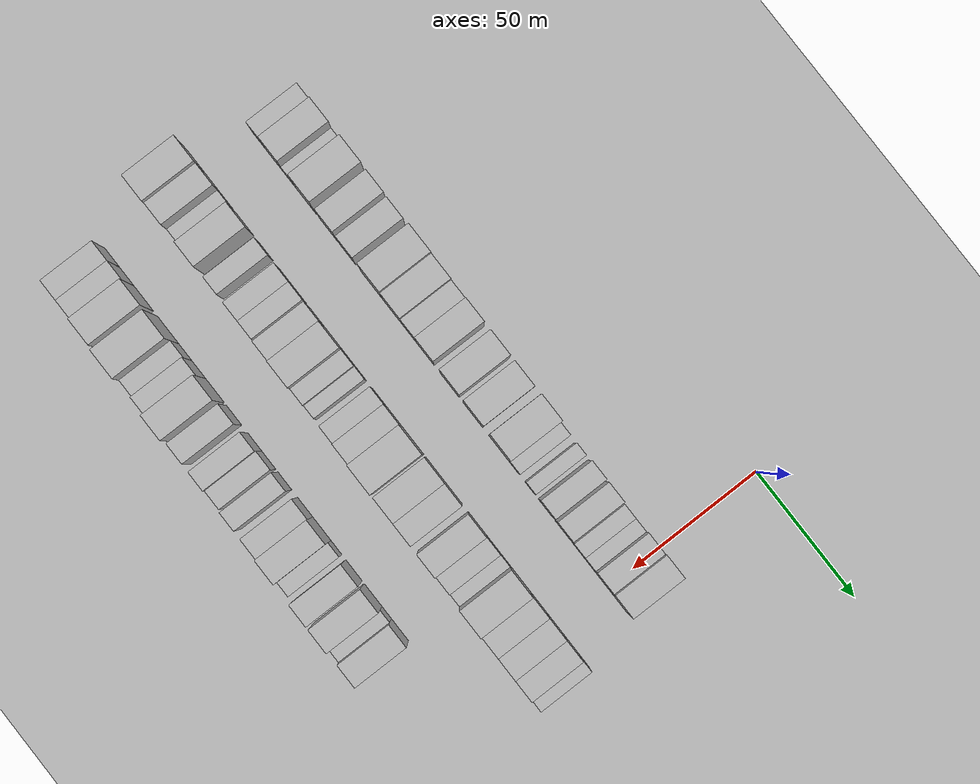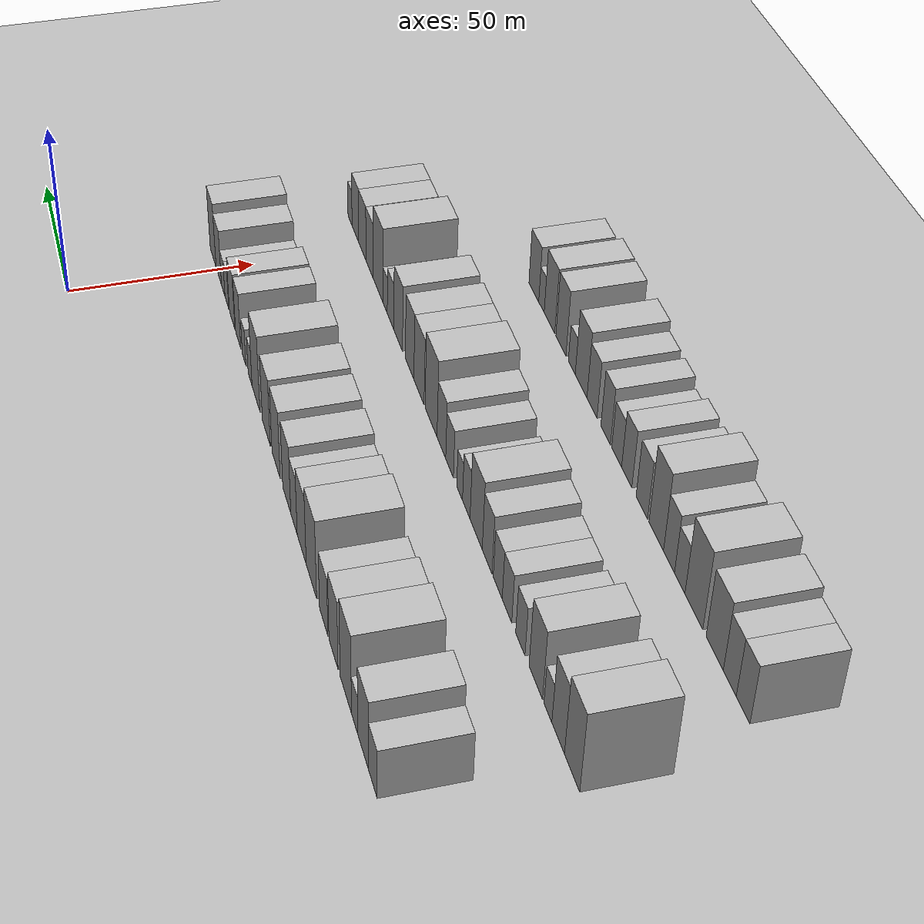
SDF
<sdf version="1.6">
 <world name="default">
  <include><name>ground_plane_1</name><uri>model://HANNAS_ground_plane</uri></include>
  <include>
   <name>ground_plane_2</name>
   <uri>model://HANNAS_ground_plane</uri>
   <pose>100 0 0  0 0 0</pose>
  </include>
  <model name="building_22">
   <static>1</static>
   <pose>50.0000 -181.2053 0 0.000000 0.000000 0.000000</pose>
   <link name="link">
    <pose>0 0 7.50 0 0 0</pose>
    <collision name="collision"><geometry><box><size>20.0000 7.4408 15.0000</size></box></geometry></collision>
    <visual name="visual">
     <cast_shadows>0</cast_shadows>
     <geometry><box><size>20.0000 7.4408 15.0000</size></box></geometry>
     <material>
      <script>
       <uri>model://HANNAS_wall/materials/scripts</uri>
       <uri>model://HANNAS_wall/materials/textures</uri>
       <name>vrc/HANNAS_wall</name>
      </script>
     </material>
    </visual>
   </link>
  </model>
  <model name="building_23">
   <static>1</static>
   <pose>50.0000 -172.6425 0 0.000000 0.000000 0.000000</pose>
   <link name="link">
    <pose>0 0 10.50 0 0 0</pose>
    <collision name="collision"><geometry><box><size>20.0000 9.6848 21.0000</size></box></geometry></collision>
    <visual name="visual">
     <cast_shadows>0</cast_shadows>
     <geometry><box><size>20.0000 9.6848 21.0000</size></box></geometry>
     <material>
      <script>
       <uri>model://HANNAS_wall/materials/scripts</uri>
       <uri>model://HANNAS_wall/materials/textures</uri>
       <name>vrc/HANNAS_wall</name>
      </script>
     </material>
    </visual>
   </link>
  </model>
  <model name="building_24">
   <static>1</static>
   <pose>50.0000 -164.8970 0 0.000000 0.000000 0.000000</pose>
   <link name="link">
    <pose>0 0 6.00 0 0 0</pose>
    <collision name="collision"><geometry><box><size>20.0000 5.8061 12.0000</size></box></geometry></collision>
    <visual name="visual">
     <cast_shadows>0</cast_shadows>
     <geometry><box><size>20.0000 5.8061 12.0000</size></box></geometry>
     <material>
      <script>
       <uri>model://HANNAS_wall/materials/scripts</uri>
       <uri>model://HANNAS_wall/materials/textures</uri>
       <name>vrc/HANNAS_wall</name>
      </script>
     </material>
    </visual>
   </link>
  </model>
  <model name="building_25">
   <static>1</static>
   <pose>50.0000 -156.5875 0 0.000000 0.000000 0.000000</pose>
   <link name="link">
    <pose>0 0 12.00 0 0 0</pose>
    <collision name="collision"><geometry><box><size>20.0000 10.8130 24.0000</size></box></geometry></collision>
    <visual name="visual">
     <cast_shadows>0</cast_shadows>
     <geometry><box><size>20.0000 10.8130 24.0000</size></box></geometry>
     <material>
      <script>
       <uri>model://HANNAS_wall/materials/scripts</uri>
       <uri>model://HANNAS_wall/materials/textures</uri>
       <name>vrc/HANNAS_wall</name>
      </script>
     </material>
    </visual>
   </link>
  </model>
  <model name="building_26">
   <static>1</static>
   <pose>50.0000 -144.6753 0 0.000000 0.000000 0.000000</pose>
   <link name="link">
    <pose>0 0 10.50 0 0 0</pose>
    <collision name="collision"><geometry><box><size>20.0000 9.0112 21.0000</size></box></geometry></collision>
    <visual name="visual">
     <cast_shadows>0</cast_shadows>
     <geometry><box><size>20.0000 9.0112 21.0000</size></box></geometry>
     <material>
      <script>
       <uri>model://HANNAS_wall/materials/scripts</uri>
       <uri>model://HANNAS_wall/materials/textures</uri>
       <name>vrc/HANNAS_wall</name>
      </script>
     </material>
    </visual>
   </link>
  </model>
  <model name="building_27">
   <static>1</static>
   <pose>50.0000 -134.8729 0 0.000000 0.000000 0.000000</pose>
   <link name="link">
    <pose>0 0 9.00 0 0 0</pose>
    <collision name="collision"><geometry><box><size>20.0000 8.5936 18.0000</size></box></geometry></collision>
    <visual name="visual">
     <cast_shadows>0</cast_shadows>
     <geometry><box><size>20.0000 8.5936 18.0000</size></box></geometry>
     <material>
      <script>
       <uri>model://HANNAS_wall/materials/scripts</uri>
       <uri>model://HANNAS_wall/materials/textures</uri>
       <name>vrc/HANNAS_wall</name>
      </script>
     </material>
    </visual>
   </link>
  </model>
  <model name="building_28">
   <static>1</static>
   <pose>50.0000 -121.9977 0 0.000000 0.000000 0.000000</pose>
   <link name="link">
    <pose>0 0 12.00 0 0 0</pose>
    <collision name="collision"><geometry><box><size>20.0000 11.1568 24.0000</size></box></geometry></collision>
    <visual name="visual">
     <cast_shadows>0</cast_shadows>
     <geometry><box><size>20.0000 11.1568 24.0000</size></box></geometry>
     <material>
      <script>
       <uri>model://HANNAS_wall/materials/scripts</uri>
       <uri>model://HANNAS_wall/materials/textures</uri>
       <name>vrc/HANNAS_wall</name>
      </script>
     </material>
    </visual>
   </link>
  </model>
  <model name="building_29">
   <static>1</static>
   <pose>50.0000 -111.4554 0 0.000000 0.000000 0.000000</pose>
   <link name="link">
    <pose>0 0 10.50 0 0 0</pose>
    <collision name="collision"><geometry><box><size>20.0000 9.9280 21.0000</size></box></geometry></collision>
    <visual name="visual">
     <cast_shadows>0</cast_shadows>
     <geometry><box><size>20.0000 9.9280 21.0000</size></box></geometry>
     <material>
      <script>
       <uri>model://HANNAS_wall/materials/scripts</uri>
       <uri>model://HANNAS_wall/materials/textures</uri>
       <name>vrc/HANNAS_wall</name>
      </script>
     </material>
    </visual>
   </link>
  </model>
  <model name="building_30">
   <static>1</static>
   <pose>50.0000 -102.8536 0 0.000000 0.000000 0.000000</pose>
   <link name="link">
    <pose>0 0 9.00 0 0 0</pose>
    <collision name="collision"><geometry><box><size>20.0000 7.2755 18.0000</size></box></geometry></collision>
    <visual name="visual">
     <cast_shadows>0</cast_shadows>
     <geometry><box><size>20.0000 7.2755 18.0000</size></box></geometry>
     <material>
      <script>
       <uri>model://HANNAS_wall/materials/scripts</uri>
       <uri>model://HANNAS_wall/materials/textures</uri>
       <name>vrc/HANNAS_wall</name>
      </script>
     </material>
    </visual>
   </link>
  </model>
  <model name="building_31">
   <static>1</static>
   <pose>50.0000 -94.5185 0 0.000000 0.000000 0.000000</pose>
   <link name="link">
    <pose>0 0 10.50 0 0 0</pose>
    <collision name="collision"><geometry><box><size>20.0000 9.3947 21.0000</size></box></geometry></collision>
    <visual name="visual">
     <cast_shadows>0</cast_shadows>
     <geometry><box><size>20.0000 9.3947 21.0000</size></box></geometry>
     <material>
      <script>
       <uri>model://HANNAS_wall/materials/scripts</uri>
       <uri>model://HANNAS_wall/materials/textures</uri>
       <name>vrc/HANNAS_wall</name>
      </script>
     </material>
    </visual>
   </link>
  </model>
  <model name="building_32">
   <static>1</static>
   <pose>50.0000 -81.8265 0 0.000000 0.000000 0.000000</pose>
   <link name="link">
    <pose>0 0 10.50 0 0 0</pose>
    <collision name="collision"><geometry><box><size>20.0000 9.9894 21.0000</size></box></geometry></collision>
    <visual name="visual">
     <cast_shadows>0</cast_shadows>
     <geometry><box><size>20.0000 9.9894 21.0000</size></box></geometry>
     <material>
      <script>
       <uri>model://HANNAS_wall/materials/scripts</uri>
       <uri>model://HANNAS_wall/materials/textures</uri>
       <name>vrc/HANNAS_wall</name>
      </script>
     </material>
    </visual>
   </link>
  </model>
  <model name="building_33">
   <static>1</static>
   <pose>50.0000 -69.7775 0 0.000000 0.000000 0.000000</pose>
   <link name="link">
    <pose>0 0 10.50 0 0 0</pose>
    <collision name="collision"><geometry><box><size>20.0000 10.1087 21.0000</size></box></geometry></collision>
    <visual name="visual">
     <cast_shadows>0</cast_shadows>
     <geometry><box><size>20.0000 10.1087 21.0000</size></box></geometry>
     <material>
      <script>
       <uri>model://HANNAS_wall/materials/scripts</uri>
       <uri>model://HANNAS_wall/materials/textures</uri>
       <name>vrc/HANNAS_wall</name>
      </script>
     </material>
    </visual>
   </link>
  </model>
  <model name="building_34">
   <static>1</static>
   <pose>50.0000 -56.4884 0 0.000000 0.000000 0.000000</pose>
   <link name="link">
    <pose>0 0 12.00 0 0 0</pose>
    <collision name="collision"><geometry><box><size>20.0000 10.4695 24.0000</size></box></geometry></collision>
    <visual name="visual">
     <cast_shadows>0</cast_shadows>
     <geometry><box><size>20.0000 10.4695 24.0000</size></box></geometry>
     <material>
      <script>
       <uri>model://HANNAS_wall/materials/scripts</uri>
       <uri>model://HANNAS_wall/materials/textures</uri>
       <name>vrc/HANNAS_wall</name>
      </script>
     </material>
    </visual>
   </link>
  </model>
  <model name="building_35">
   <static>1</static>
   <pose>50.0000 -48.6199 0 0.000000 0.000000 0.000000</pose>
   <link name="link">
    <pose>0 0 6.00 0 0 0</pose>
    <collision name="collision"><geometry><box><size>20.0000 5.2676 12.0000</size></box></geometry></collision>
    <visual name="visual">
     <cast_shadows>0</cast_shadows>
     <geometry><box><size>20.0000 5.2676 12.0000</size></box></geometry>
     <material>
      <script>
       <uri>model://HANNAS_wall/materials/scripts</uri>
       <uri>model://HANNAS_wall/materials/textures</uri>
       <name>vrc/HANNAS_wall</name>
      </script>
     </material>
    </visual>
   </link>
  </model>
  <model name="building_36">
   <static>1</static>
   <pose>50.0000 -40.5141 0 0.000000 0.000000 0.000000</pose>
   <link name="link">
    <pose>0 0 6.00 0 0 0</pose>
    <collision name="collision"><geometry><box><size>20.0000 4.9439 12.0000</size></box></geometry></collision>
    <visual name="visual">
     <cast_shadows>0</cast_shadows>
     <geometry><box><size>20.0000 4.9439 12.0000</size></box></geometry>
     <material>
      <script>
       <uri>model://HANNAS_wall/materials/scripts</uri>
       <uri>model://HANNAS_wall/materials/textures</uri>
       <name>vrc/HANNAS_wall</name>
      </script>
     </material>
    </visual>
   </link>
  </model>
  <model name="building_37">
   <static>1</static>
   <pose>50.0000 -32.3380 0 0.000000 0.000000 0.000000</pose>
   <link name="link">
    <pose>0 0 9.00 0 0 0</pose>
    <collision name="collision"><geometry><box><size>20.0000 7.4083 18.0000</size></box></geometry></collision>
    <visual name="visual">
     <cast_shadows>0</cast_shadows>
     <geometry><box><size>20.0000 7.4083 18.0000</size></box></geometry>
     <material>
      <script>
       <uri>model://HANNAS_wall/materials/scripts</uri>
       <uri>model://HANNAS_wall/materials/textures</uri>
       <name>vrc/HANNAS_wall</name>
      </script>
     </material>
    </visual>
   </link>
  </model>
  <model name="building_38">
   <static>1</static>
   <pose>50.0000 -23.7033 0 0.000000 0.000000 0.000000</pose>
   <link name="link">
    <pose>0 0 9.00 0 0 0</pose>
    <collision name="collision"><geometry><box><size>20.0000 7.8612 18.0000</size></box></geometry></collision>
    <visual name="visual">
     <cast_shadows>0</cast_shadows>
     <geometry><box><size>20.0000 7.8612 18.0000</size></box></geometry>
     <material>
      <script>
       <uri>model://HANNAS_wall/materials/scripts</uri>
       <uri>model://HANNAS_wall/materials/textures</uri>
       <name>vrc/HANNAS_wall</name>
      </script>
     </material>
    </visual>
   </link>
  </model>
  <model name="building_39">
   <static>1</static>
   <pose>50.0000 -15.9602 0 0.000000 0.000000 0.000000</pose>
   <link name="link">
    <pose>0 0 6.00 0 0 0</pose>
    <collision name="collision"><geometry><box><size>20.0000 5.6249 12.0000</size></box></geometry></collision>
    <visual name="visual">
     <cast_shadows>0</cast_shadows>
     <geometry><box><size>20.0000 5.6249 12.0000</size></box></geometry>
     <material>
      <script>
       <uri>model://HANNAS_wall/materials/scripts</uri>
       <uri>model://HANNAS_wall/materials/textures</uri>
       <name>vrc/HANNAS_wall</name>
      </script>
     </material>
    </visual>
   </link>
  </model>
  <model name="building_40">
   <static>1</static>
   <pose>50.0000 -10.5560 0 0.000000 0.000000 0.000000</pose>
   <link name="link">
    <pose>0 0 6.00 0 0 0</pose>
    <collision name="collision"><geometry><box><size>20.0000 5.1836 12.0000</size></box></geometry></collision>
    <visual name="visual">
     <cast_shadows>0</cast_shadows>
     <geometry><box><size>20.0000 5.1836 12.0000</size></box></geometry>
     <material>
      <script>
       <uri>model://HANNAS_wall/materials/scripts</uri>
       <uri>model://HANNAS_wall/materials/textures</uri>
       <name>vrc/HANNAS_wall</name>
      </script>
     </material>
    </visual>
   </link>
  </model>
  <model name="building_41">
   <static>1</static>
   <pose>50.0000 -3.8160 0 0.000000 0.000000 0.000000</pose>
   <link name="link">
    <pose>0 0 9.00 0 0 0</pose>
    <collision name="collision"><geometry><box><size>20.0000 8.2964 18.0000</size></box></geometry></collision>
    <visual name="visual">
     <cast_shadows>0</cast_shadows>
     <geometry><box><size>20.0000 8.2964 18.0000</size></box></geometry>
     <material>
      <script>
       <uri>model://HANNAS_wall/materials/scripts</uri>
       <uri>model://HANNAS_wall/materials/textures</uri>
       <name>vrc/HANNAS_wall</name>
      </script>
     </material>
    </visual>
   </link>
  </model>
  <model name="building_42">
   <static>1</static>
   <pose>50.0000 4.8499 0 0.000000 0.000000 0.000000</pose>
   <link name="link">
    <pose>0 0 10.50 0 0 0</pose>
    <collision name="collision"><geometry><box><size>20.0000 9.0354 21.0000</size></box></geometry></collision>
    <visual name="visual">
     <cast_shadows>0</cast_shadows>
     <geometry><box><size>20.0000 9.0354 21.0000</size></box></geometry>
     <material>
      <script>
       <uri>model://HANNAS_wall/materials/scripts</uri>
       <uri>model://HANNAS_wall/materials/textures</uri>
       <name>vrc/HANNAS_wall</name>
      </script>
     </material>
    </visual>
   </link>
  </model>
  <model name="building_107">
   <static>1</static>
   <pose>90.0000 -187.8448 0 0.000000 0.000000 0.000000</pose>
   <link name="link">
    <pose>0 0 12.00 0 0 0</pose>
    <collision name="collision"><geometry><box><size>20.0000 10.1697 24.0000</size></box></geometry></collision>
    <visual name="visual">
     <cast_shadows>0</cast_shadows>
     <geometry><box><size>20.0000 10.1697 24.0000</size></box></geometry>
     <material>
      <script>
       <uri>model://HANNAS_wall/materials/scripts</uri>
       <uri>model://HANNAS_wall/materials/textures</uri>
       <name>vrc/HANNAS_wall</name>
      </script>
     </material>
    </visual>
   </link>
  </model>
  <model name="building_108">
   <static>1</static>
   <pose>90.0000 -178.4564 0 0.000000 0.000000 0.000000</pose>
   <link name="link">
    <pose>0 0 10.50 0 0 0</pose>
    <collision name="collision"><geometry><box><size>20.0000 8.6071 21.0000</size></box></geometry></collision>
    <visual name="visual">
     <cast_shadows>0</cast_shadows>
     <geometry><box><size>20.0000 8.6071 21.0000</size></box></geometry>
     <material>
      <script>
       <uri>model://HANNAS_wall/materials/scripts</uri>
       <uri>model://HANNAS_wall/materials/textures</uri>
       <name>vrc/HANNAS_wall</name>
      </script>
     </material>
    </visual>
   </link>
  </model>
  <model name="building_109">
   <static>1</static>
   <pose>90.0000 -171.3762 0 0.000000 0.000000 0.000000</pose>
   <link name="link">
    <pose>0 0 6.00 0 0 0</pose>
    <collision name="collision"><geometry><box><size>20.0000 5.5532 12.0000</size></box></geometry></collision>
    <visual name="visual">
     <cast_shadows>0</cast_shadows>
     <geometry><box><size>20.0000 5.5532 12.0000</size></box></geometry>
     <material>
      <script>
       <uri>model://HANNAS_wall/materials/scripts</uri>
       <uri>model://HANNAS_wall/materials/textures</uri>
       <name>vrc/HANNAS_wall</name>
      </script>
     </material>
    </visual>
   </link>
  </model>
  <model name="building_110">
   <static>1</static>
   <pose>90.0000 -162.7116 0 0.000000 0.000000 0.000000</pose>
   <link name="link">
    <pose>0 0 10.50 0 0 0</pose>
    <collision name="collision"><geometry><box><size>20.0000 9.7762 21.0000</size></box></geometry></collision>
    <visual name="visual">
     <cast_shadows>0</cast_shadows>
     <geometry><box><size>20.0000 9.7762 21.0000</size></box></geometry>
     <material>
      <script>
       <uri>model://HANNAS_wall/materials/scripts</uri>
       <uri>model://HANNAS_wall/materials/textures</uri>
       <name>vrc/HANNAS_wall</name>
      </script>
     </material>
    </visual>
   </link>
  </model>
  <model name="building_111">
   <static>1</static>
   <pose>90.0000 -151.3101 0 0.000000 0.000000 0.000000</pose>
   <link name="link">
    <pose>0 0 7.50 0 0 0</pose>
    <collision name="collision"><geometry><box><size>20.0000 7.0269 15.0000</size></box></geometry></collision>
    <visual name="visual">
     <cast_shadows>0</cast_shadows>
     <geometry><box><size>20.0000 7.0269 15.0000</size></box></geometry>
     <material>
      <script>
       <uri>model://HANNAS_wall/materials/scripts</uri>
       <uri>model://HANNAS_wall/materials/textures</uri>
       <name>vrc/HANNAS_wall</name>
      </script>
     </material>
    </visual>
   </link>
  </model>
  <model name="building_112">
   <static>1</static>
   <pose>90.0000 -141.0720 0 0.000000 0.000000 0.000000</pose>
   <link name="link">
    <pose>0 0 7.50 0 0 0</pose>
    <collision name="collision"><geometry><box><size>20.0000 7.4492 15.0000</size></box></geometry></collision>
    <visual name="visual">
     <cast_shadows>0</cast_shadows>
     <geometry><box><size>20.0000 7.4492 15.0000</size></box></geometry>
     <material>
      <script>
       <uri>model://HANNAS_wall/materials/scripts</uri>
       <uri>model://HANNAS_wall/materials/textures</uri>
       <name>vrc/HANNAS_wall</name>
      </script>
     </material>
    </visual>
   </link>
  </model>
  <model name="building_113">
   <static>1</static>
   <pose>90.0000 -133.7697 0 0.000000 0.000000 0.000000</pose>
   <link name="link">
    <pose>0 0 7.50 0 0 0</pose>
    <collision name="collision"><geometry><box><size>20.0000 7.1555 15.0000</size></box></geometry></collision>
    <visual name="visual">
     <cast_shadows>0</cast_shadows>
     <geometry><box><size>20.0000 7.1555 15.0000</size></box></geometry>
     <material>
      <script>
       <uri>model://HANNAS_wall/materials/scripts</uri>
       <uri>model://HANNAS_wall/materials/textures</uri>
       <name>vrc/HANNAS_wall</name>
      </script>
     </material>
    </visual>
   </link>
  </model>
  <model name="building_114">
   <static>1</static>
   <pose>90.0000 -125.1662 0 0.000000 0.000000 0.000000</pose>
   <link name="link">
    <pose>0 0 9.00 0 0 0</pose>
    <collision name="collision"><geometry><box><size>20.0000 8.0514 18.0000</size></box></geometry></collision>
    <visual name="visual">
     <cast_shadows>0</cast_shadows>
     <geometry><box><size>20.0000 8.0514 18.0000</size></box></geometry>
     <material>
      <script>
       <uri>model://HANNAS_wall/materials/scripts</uri>
       <uri>model://HANNAS_wall/materials/textures</uri>
       <name>vrc/HANNAS_wall</name>
      </script>
     </material>
    </visual>
   </link>
  </model>
  <model name="building_115">
   <static>1</static>
   <pose>90.0000 -115.9366 0 0.000000 0.000000 0.000000</pose>
   <link name="link">
    <pose>0 0 10.50 0 0 0</pose>
    <collision name="collision"><geometry><box><size>20.0000 10.4077 21.0000</size></box></geometry></collision>
    <visual name="visual">
     <cast_shadows>0</cast_shadows>
     <geometry><box><size>20.0000 10.4077 21.0000</size></box></geometry>
     <material>
      <script>
       <uri>model://HANNAS_wall/materials/scripts</uri>
       <uri>model://HANNAS_wall/materials/textures</uri>
       <name>vrc/HANNAS_wall</name>
      </script>
     </material>
    </visual>
   </link>
  </model>
  <model name="building_116">
   <static>1</static>
   <pose>90.0000 -107.4800 0 0.000000 0.000000 0.000000</pose>
   <link name="link">
    <pose>0 0 7.50 0 0 0</pose>
    <collision name="collision"><geometry><box><size>20.0000 6.5055 15.0000</size></box></geometry></collision>
    <visual name="visual">
     <cast_shadows>0</cast_shadows>
     <geometry><box><size>20.0000 6.5055 15.0000</size></box></geometry>
     <material>
      <script>
       <uri>model://HANNAS_wall/materials/scripts</uri>
       <uri>model://HANNAS_wall/materials/textures</uri>
       <name>vrc/HANNAS_wall</name>
      </script>
     </material>
    </visual>
   </link>
  </model>
  <model name="building_117">
   <static>1</static>
   <pose>90.0000 -101.6644 0 0.000000 0.000000 0.000000</pose>
   <link name="link">
    <pose>0 0 6.00 0 0 0</pose>
    <collision name="collision"><geometry><box><size>20.0000 5.1257 12.0000</size></box></geometry></collision>
    <visual name="visual">
     <cast_shadows>0</cast_shadows>
     <geometry><box><size>20.0000 5.1257 12.0000</size></box></geometry>
     <material>
      <script>
       <uri>model://HANNAS_wall/materials/scripts</uri>
       <uri>model://HANNAS_wall/materials/textures</uri>
       <name>vrc/HANNAS_wall</name>
      </script>
     </material>
    </visual>
   </link>
  </model>
  <model name="building_118">
   <static>1</static>
   <pose>90.0000 -92.5995 0 0.000000 0.000000 0.000000</pose>
   <link name="link">
    <pose>0 0 7.50 0 0 0</pose>
    <collision name="collision"><geometry><box><size>20.0000 7.0041 15.0000</size></box></geometry></collision>
    <visual name="visual">
     <cast_shadows>0</cast_shadows>
     <geometry><box><size>20.0000 7.0041 15.0000</size></box></geometry>
     <material>
      <script>
       <uri>model://HANNAS_wall/materials/scripts</uri>
       <uri>model://HANNAS_wall/materials/textures</uri>
       <name>vrc/HANNAS_wall</name>
      </script>
     </material>
    </visual>
   </link>
  </model>
  <model name="building_119">
   <static>1</static>
   <pose>90.0000 -85.0147 0 0.000000 0.000000 0.000000</pose>
   <link name="link">
    <pose>0 0 9.00 0 0 0</pose>
    <collision name="collision"><geometry><box><size>20.0000 8.1655 18.0000</size></box></geometry></collision>
    <visual name="visual">
     <cast_shadows>0</cast_shadows>
     <geometry><box><size>20.0000 8.1655 18.0000</size></box></geometry>
     <material>
      <script>
       <uri>model://HANNAS_wall/materials/scripts</uri>
       <uri>model://HANNAS_wall/materials/textures</uri>
       <name>vrc/HANNAS_wall</name>
      </script>
     </material>
    </visual>
   </link>
  </model>
  <model name="building_120">
   <static>1</static>
   <pose>90.0000 -75.1805 0 0.000000 0.000000 0.000000</pose>
   <link name="link">
    <pose>0 0 12.00 0 0 0</pose>
    <collision name="collision"><geometry><box><size>20.0000 11.5029 24.0000</size></box></geometry></collision>
    <visual name="visual">
     <cast_shadows>0</cast_shadows>
     <geometry><box><size>20.0000 11.5029 24.0000</size></box></geometry>
     <material>
      <script>
       <uri>model://HANNAS_wall/materials/scripts</uri>
       <uri>model://HANNAS_wall/materials/textures</uri>
       <name>vrc/HANNAS_wall</name>
      </script>
     </material>
    </visual>
   </link>
  </model>
  <model name="building_121">
   <static>1</static>
   <pose>90.0000 -63.3546 0 0.000000 0.000000 0.000000</pose>
   <link name="link">
    <pose>0 0 10.50 0 0 0</pose>
    <collision name="collision"><geometry><box><size>20.0000 10.1490 21.0000</size></box></geometry></collision>
    <visual name="visual">
     <cast_shadows>0</cast_shadows>
     <geometry><box><size>20.0000 10.1490 21.0000</size></box></geometry>
     <material>
      <script>
       <uri>model://HANNAS_wall/materials/scripts</uri>
       <uri>model://HANNAS_wall/materials/textures</uri>
       <name>vrc/HANNAS_wall</name>
      </script>
     </material>
    </visual>
   </link>
  </model>
  <model name="building_122">
   <static>1</static>
   <pose>90.0000 -53.9121 0 0.000000 0.000000 0.000000</pose>
   <link name="link">
    <pose>0 0 10.50 0 0 0</pose>
    <collision name="collision"><geometry><box><size>20.0000 8.7361 21.0000</size></box></geometry></collision>
    <visual name="visual">
     <cast_shadows>0</cast_shadows>
     <geometry><box><size>20.0000 8.7361 21.0000</size></box></geometry>
     <material>
      <script>
       <uri>model://HANNAS_wall/materials/scripts</uri>
       <uri>model://HANNAS_wall/materials/textures</uri>
       <name>vrc/HANNAS_wall</name>
      </script>
     </material>
    </visual>
   </link>
  </model>
  <model name="building_123">
   <static>1</static>
   <pose>90.0000 -41.9718 0 0.000000 0.000000 0.000000</pose>
   <link name="link">
    <pose>0 0 10.50 0 0 0</pose>
    <collision name="collision"><geometry><box><size>20.0000 9.1444 21.0000</size></box></geometry></collision>
    <visual name="visual">
     <cast_shadows>0</cast_shadows>
     <geometry><box><size>20.0000 9.1444 21.0000</size></box></geometry>
     <material>
      <script>
       <uri>model://HANNAS_wall/materials/scripts</uri>
       <uri>model://HANNAS_wall/materials/textures</uri>
       <name>vrc/HANNAS_wall</name>
      </script>
     </material>
    </visual>
   </link>
  </model>
  <model name="building_124">
   <static>1</static>
   <pose>90.0000 -33.8086 0 0.000000 0.000000 0.000000</pose>
   <link name="link">
    <pose>0 0 7.50 0 0 0</pose>
    <collision name="collision"><geometry><box><size>20.0000 7.1821 15.0000</size></box></geometry></collision>
    <visual name="visual">
     <cast_shadows>0</cast_shadows>
     <geometry><box><size>20.0000 7.1821 15.0000</size></box></geometry>
     <material>
      <script>
       <uri>model://HANNAS_wall/materials/scripts</uri>
       <uri>model://HANNAS_wall/materials/textures</uri>
       <name>vrc/HANNAS_wall</name>
      </script>
     </material>
    </visual>
   </link>
  </model>
  <model name="building_125">
   <static>1</static>
   <pose>90.0000 -27.7693 0 0.000000 0.000000 0.000000</pose>
   <link name="link">
    <pose>0 0 6.00 0 0 0</pose>
    <collision name="collision"><geometry><box><size>20.0000 4.8965 12.0000</size></box></geometry></collision>
    <visual name="visual">
     <cast_shadows>0</cast_shadows>
     <geometry><box><size>20.0000 4.8965 12.0000</size></box></geometry>
     <material>
      <script>
       <uri>model://HANNAS_wall/materials/scripts</uri>
       <uri>model://HANNAS_wall/materials/textures</uri>
       <name>vrc/HANNAS_wall</name>
      </script>
     </material>
    </visual>
   </link>
  </model>
  <model name="building_126">
   <static>1</static>
   <pose>90.0000 -19.9947 0 0.000000 0.000000 0.000000</pose>
   <link name="link">
    <pose>0 0 12.00 0 0 0</pose>
    <collision name="collision"><geometry><box><size>20.0000 10.6526 24.0000</size></box></geometry></collision>
    <visual name="visual">
     <cast_shadows>0</cast_shadows>
     <geometry><box><size>20.0000 10.6526 24.0000</size></box></geometry>
     <material>
      <script>
       <uri>model://HANNAS_wall/materials/scripts</uri>
       <uri>model://HANNAS_wall/materials/textures</uri>
       <name>vrc/HANNAS_wall</name>
      </script>
     </material>
    </visual>
   </link>
  </model>
  <model name="building_127">
   <static>1</static>
   <pose>90.0000 -10.3225 0 0.000000 0.000000 0.000000</pose>
   <link name="link">
    <pose>0 0 9.00 0 0 0</pose>
    <collision name="collision"><geometry><box><size>20.0000 8.6918 18.0000</size></box></geometry></collision>
    <visual name="visual">
     <cast_shadows>0</cast_shadows>
     <geometry><box><size>20.0000 8.6918 18.0000</size></box></geometry>
     <material>
      <script>
       <uri>model://HANNAS_wall/materials/scripts</uri>
       <uri>model://HANNAS_wall/materials/textures</uri>
       <name>vrc/HANNAS_wall</name>
      </script>
     </material>
    </visual>
   </link>
  </model>
  <model name="building_128">
   <static>1</static>
   <pose>90.0000 -1.7011 0 0.000000 0.000000 0.000000</pose>
   <link name="link">
    <pose>0 0 9.00 0 0 0</pose>
    <collision name="collision"><geometry><box><size>20.0000 8.5512 18.0000</size></box></geometry></collision>
    <visual name="visual">
     <cast_shadows>0</cast_shadows>
     <geometry><box><size>20.0000 8.5512 18.0000</size></box></geometry>
     <material>
      <script>
       <uri>model://HANNAS_wall/materials/scripts</uri>
       <uri>model://HANNAS_wall/materials/textures</uri>
       <name>vrc/HANNAS_wall</name>
      </script>
     </material>
    </visual>
   </link>
  </model>
  <model name="building_129">
   <static>1</static>
   <pose>90.0000 6.6584 0 0.000000 0.000000 0.000000</pose>
   <link name="link">
    <pose>0 0 9.00 0 0 0</pose>
    <collision name="collision"><geometry><box><size>20.0000 8.1678 18.0000</size></box></geometry></collision>
    <visual name="visual">
     <cast_shadows>0</cast_shadows>
     <geometry><box><size>20.0000 8.1678 18.0000</size></box></geometry>
     <material>
      <script>
       <uri>model://HANNAS_wall/materials/scripts</uri>
       <uri>model://HANNAS_wall/materials/textures</uri>
       <name>vrc/HANNAS_wall</name>
      </script>
     </material>
    </visual>
   </link>
  </model>
  <model name="building_130">
   <static>1</static>
   <pose>90.0000 13.2261 0 0.000000 0.000000 0.000000</pose>
   <link name="link">
    <pose>0 0 6.00 0 0 0</pose>
    <collision name="collision"><geometry><box><size>20.0000 4.9676 12.0000</size></box></geometry></collision>
    <visual name="visual">
     <cast_shadows>0</cast_shadows>
     <geometry><box><size>20.0000 4.9676 12.0000</size></box></geometry>
     <material>
      <script>
       <uri>model://HANNAS_wall/materials/scripts</uri>
       <uri>model://HANNAS_wall/materials/textures</uri>
       <name>vrc/HANNAS_wall</name>
      </script>
     </material>
    </visual>
   </link>
  </model>
  <model name="building_191">
   <static>1</static>
   <pose>130.0000 -180.2423 0 0.000000 0.000000 0.000000</pose>
   <link name="link">
    <pose>0 0 9.00 0 0 0</pose>
    <collision name="collision"><geometry><box><size>20.0000 7.7831 18.0000</size></box></geometry></collision>
    <visual name="visual">
     <cast_shadows>0</cast_shadows>
     <geometry><box><size>20.0000 7.7831 18.0000</size></box></geometry>
     <material>
      <script>
       <uri>model://HANNAS_wall/materials/scripts</uri>
       <uri>model://HANNAS_wall/materials/textures</uri>
       <name>vrc/HANNAS_wall</name>
      </script>
     </material>
    </visual>
   </link>
  </model>
  <model name="building_192">
   <static>1</static>
   <pose>130.0000 -172.5850 0 0.000000 0.000000 0.000000</pose>
   <link name="link">
    <pose>0 0 9.00 0 0 0</pose>
    <collision name="collision"><geometry><box><size>20.0000 7.5314 18.0000</size></box></geometry></collision>
    <visual name="visual">
     <cast_shadows>0</cast_shadows>
     <geometry><box><size>20.0000 7.5314 18.0000</size></box></geometry>
     <material>
      <script>
       <uri>model://HANNAS_wall/materials/scripts</uri>
       <uri>model://HANNAS_wall/materials/textures</uri>
       <name>vrc/HANNAS_wall</name>
      </script>
     </material>
    </visual>
   </link>
  </model>
  <model name="building_193">
   <static>1</static>
   <pose>130.0000 -163.6756 0 0.000000 0.000000 0.000000</pose>
   <link name="link">
    <pose>0 0 10.50 0 0 0</pose>
    <collision name="collision"><geometry><box><size>20.0000 10.2875 21.0000</size></box></geometry></collision>
    <visual name="visual">
     <cast_shadows>0</cast_shadows>
     <geometry><box><size>20.0000 10.2875 21.0000</size></box></geometry>
     <material>
      <script>
       <uri>model://HANNAS_wall/materials/scripts</uri>
       <uri>model://HANNAS_wall/materials/textures</uri>
       <name>vrc/HANNAS_wall</name>
      </script>
     </material>
    </visual>
   </link>
  </model>
  <model name="building_194">
   <static>1</static>
   <pose>130.0000 -150.9078 0 0.000000 0.000000 0.000000</pose>
   <link name="link">
    <pose>0 0 12.00 0 0 0</pose>
    <collision name="collision"><geometry><box><size>20.0000 11.2481 24.0000</size></box></geometry></collision>
    <visual name="visual">
     <cast_shadows>0</cast_shadows>
     <geometry><box><size>20.0000 11.2481 24.0000</size></box></geometry>
     <material>
      <script>
       <uri>model://HANNAS_wall/materials/scripts</uri>
       <uri>model://HANNAS_wall/materials/textures</uri>
       <name>vrc/HANNAS_wall</name>
      </script>
     </material>
    </visual>
   </link>
  </model>
  <model name="building_195">
   <static>1</static>
   <pose>130.0000 -141.9153 0 0.000000 0.000000 0.000000</pose>
   <link name="link">
    <pose>0 0 7.50 0 0 0</pose>
    <collision name="collision"><geometry><box><size>20.0000 6.7368 15.0000</size></box></geometry></collision>
    <visual name="visual">
     <cast_shadows>0</cast_shadows>
     <geometry><box><size>20.0000 6.7368 15.0000</size></box></geometry>
     <material>
      <script>
       <uri>model://HANNAS_wall/materials/scripts</uri>
       <uri>model://HANNAS_wall/materials/textures</uri>
       <name>vrc/HANNAS_wall</name>
      </script>
     </material>
    </visual>
   </link>
  </model>
  <model name="building_196">
   <static>1</static>
   <pose>130.0000 -134.9187 0 0.000000 0.000000 0.000000</pose>
   <link name="link">
    <pose>0 0 9.00 0 0 0</pose>
    <collision name="collision"><geometry><box><size>20.0000 7.2563 18.0000</size></box></geometry></collision>
    <visual name="visual">
     <cast_shadows>0</cast_shadows>
     <geometry><box><size>20.0000 7.2563 18.0000</size></box></geometry>
     <material>
      <script>
       <uri>model://HANNAS_wall/materials/scripts</uri>
       <uri>model://HANNAS_wall/materials/textures</uri>
       <name>vrc/HANNAS_wall</name>
      </script>
     </material>
    </visual>
   </link>
  </model>
  <model name="building_197">
   <static>1</static>
   <pose>130.0000 -126.3628 0 0.000000 0.000000 0.000000</pose>
   <link name="link">
    <pose>0 0 12.00 0 0 0</pose>
    <collision name="collision"><geometry><box><size>20.0000 9.8557 24.0000</size></box></geometry></collision>
    <visual name="visual">
     <cast_shadows>0</cast_shadows>
     <geometry><box><size>20.0000 9.8557 24.0000</size></box></geometry>
     <material>
      <script>
       <uri>model://HANNAS_wall/materials/scripts</uri>
       <uri>model://HANNAS_wall/materials/textures</uri>
       <name>vrc/HANNAS_wall</name>
      </script>
     </material>
    </visual>
   </link>
  </model>
  <model name="building_198">
   <static>1</static>
   <pose>130.0000 -116.4203 0 0.000000 0.000000 0.000000</pose>
   <link name="link">
    <pose>0 0 9.00 0 0 0</pose>
    <collision name="collision"><geometry><box><size>20.0000 8.0293 18.0000</size></box></geometry></collision>
    <visual name="visual">
     <cast_shadows>0</cast_shadows>
     <geometry><box><size>20.0000 8.0293 18.0000</size></box></geometry>
     <material>
      <script>
       <uri>model://HANNAS_wall/materials/scripts</uri>
       <uri>model://HANNAS_wall/materials/textures</uri>
       <name>vrc/HANNAS_wall</name>
      </script>
     </material>
    </visual>
   </link>
  </model>
  <model name="building_199">
   <static>1</static>
   <pose>130.0000 -105.6713 0 0.000000 0.000000 0.000000</pose>
   <link name="link">
    <pose>0 0 9.00 0 0 0</pose>
    <collision name="collision"><geometry><box><size>20.0000 7.4685 18.0000</size></box></geometry></collision>
    <visual name="visual">
     <cast_shadows>0</cast_shadows>
     <geometry><box><size>20.0000 7.4685 18.0000</size></box></geometry>
     <material>
      <script>
       <uri>model://HANNAS_wall/materials/scripts</uri>
       <uri>model://HANNAS_wall/materials/textures</uri>
       <name>vrc/HANNAS_wall</name>
      </script>
     </material>
    </visual>
   </link>
  </model>
  <model name="building_200">
   <static>1</static>
   <pose>130.0000 -98.2793 0 0.000000 0.000000 0.000000</pose>
   <link name="link">
    <pose>0 0 7.50 0 0 0</pose>
    <collision name="collision"><geometry><box><size>20.0000 7.3156 15.0000</size></box></geometry></collision>
    <visual name="visual">
     <cast_shadows>0</cast_shadows>
     <geometry><box><size>20.0000 7.3156 15.0000</size></box></geometry>
     <material>
      <script>
       <uri>model://HANNAS_wall/materials/scripts</uri>
       <uri>model://HANNAS_wall/materials/textures</uri>
       <name>vrc/HANNAS_wall</name>
      </script>
     </material>
    </visual>
   </link>
  </model>
  <model name="building_201">
   <static>1</static>
   <pose>130.0000 -89.9898 0 0.000000 0.000000 0.000000</pose>
   <link name="link">
    <pose>0 0 9.00 0 0 0</pose>
    <collision name="collision"><geometry><box><size>20.0000 7.2633 18.0000</size></box></geometry></collision>
    <visual name="visual">
     <cast_shadows>0</cast_shadows>
     <geometry><box><size>20.0000 7.2633 18.0000</size></box></geometry>
     <material>
      <script>
       <uri>model://HANNAS_wall/materials/scripts</uri>
       <uri>model://HANNAS_wall/materials/textures</uri>
       <name>vrc/HANNAS_wall</name>
      </script>
     </material>
    </visual>
   </link>
  </model>
  <model name="building_202">
   <static>1</static>
   <pose>130.0000 -79.4058 0 0.000000 0.000000 0.000000</pose>
   <link name="link">
    <pose>0 0 9.00 0 0 0</pose>
    <collision name="collision"><geometry><box><size>20.0000 7.9048 18.0000</size></box></geometry></collision>
    <visual name="visual">
     <cast_shadows>0</cast_shadows>
     <geometry><box><size>20.0000 7.9048 18.0000</size></box></geometry>
     <material>
      <script>
       <uri>model://HANNAS_wall/materials/scripts</uri>
       <uri>model://HANNAS_wall/materials/textures</uri>
       <name>vrc/HANNAS_wall</name>
      </script>
     </material>
    </visual>
   </link>
  </model>
  <model name="building_203">
   <static>1</static>
   <pose>130.0000 -70.7229 0 0.000000 0.000000 0.000000</pose>
   <link name="link">
    <pose>0 0 10.50 0 0 0</pose>
    <collision name="collision"><geometry><box><size>20.0000 9.4608 21.0000</size></box></geometry></collision>
    <visual name="visual">
     <cast_shadows>0</cast_shadows>
     <geometry><box><size>20.0000 9.4608 21.0000</size></box></geometry>
     <material>
      <script>
       <uri>model://HANNAS_wall/materials/scripts</uri>
       <uri>model://HANNAS_wall/materials/textures</uri>
       <name>vrc/HANNAS_wall</name>
      </script>
     </material>
    </visual>
   </link>
  </model>
  <model name="building_204">
   <static>1</static>
   <pose>130.0000 -63.1671 0 0.000000 0.000000 0.000000</pose>
   <link name="link">
    <pose>0 0 6.00 0 0 0</pose>
    <collision name="collision"><geometry><box><size>20.0000 5.6508 12.0000</size></box></geometry></collision>
    <visual name="visual">
     <cast_shadows>0</cast_shadows>
     <geometry><box><size>20.0000 5.6508 12.0000</size></box></geometry>
     <material>
      <script>
       <uri>model://HANNAS_wall/materials/scripts</uri>
       <uri>model://HANNAS_wall/materials/textures</uri>
       <name>vrc/HANNAS_wall</name>
      </script>
     </material>
    </visual>
   </link>
  </model>
  <model name="building_205">
   <static>1</static>
   <pose>130.0000 -54.0675 0 0.000000 0.000000 0.000000</pose>
   <link name="link">
    <pose>0 0 10.50 0 0 0</pose>
    <collision name="collision"><geometry><box><size>20.0000 8.5483 21.0000</size></box></geometry></collision>
    <visual name="visual">
     <cast_shadows>0</cast_shadows>
     <geometry><box><size>20.0000 8.5483 21.0000</size></box></geometry>
     <material>
      <script>
       <uri>model://HANNAS_wall/materials/scripts</uri>
       <uri>model://HANNAS_wall/materials/textures</uri>
       <name>vrc/HANNAS_wall</name>
      </script>
     </material>
    </visual>
   </link>
  </model>
  <model name="building_206">
   <static>1</static>
   <pose>130.0000 -44.2155 0 0.000000 0.000000 0.000000</pose>
   <link name="link">
    <pose>0 0 10.50 0 0 0</pose>
    <collision name="collision"><geometry><box><size>20.0000 9.1558 21.0000</size></box></geometry></collision>
    <visual name="visual">
     <cast_shadows>0</cast_shadows>
     <geometry><box><size>20.0000 9.1558 21.0000</size></box></geometry>
     <material>
      <script>
       <uri>model://HANNAS_wall/materials/scripts</uri>
       <uri>model://HANNAS_wall/materials/textures</uri>
       <name>vrc/HANNAS_wall</name>
      </script>
     </material>
    </visual>
   </link>
  </model>
  <model name="building_207">
   <static>1</static>
   <pose>130.0000 -37.2111 0 0.000000 0.000000 0.000000</pose>
   <link name="link">
    <pose>0 0 6.00 0 0 0</pose>
    <collision name="collision"><geometry><box><size>20.0000 4.8529 12.0000</size></box></geometry></collision>
    <visual name="visual">
     <cast_shadows>0</cast_shadows>
     <geometry><box><size>20.0000 4.8529 12.0000</size></box></geometry>
     <material>
      <script>
       <uri>model://HANNAS_wall/materials/scripts</uri>
       <uri>model://HANNAS_wall/materials/textures</uri>
       <name>vrc/HANNAS_wall</name>
      </script>
     </material>
    </visual>
   </link>
  </model>
  <model name="building_208">
   <static>1</static>
   <pose>130.0000 -30.3567 0 0.000000 0.000000 0.000000</pose>
   <link name="link">
    <pose>0 0 9.00 0 0 0</pose>
    <collision name="collision"><geometry><box><size>20.0000 8.8559 18.0000</size></box></geometry></collision>
    <visual name="visual">
     <cast_shadows>0</cast_shadows>
     <geometry><box><size>20.0000 8.8559 18.0000</size></box></geometry>
     <material>
      <script>
       <uri>model://HANNAS_wall/materials/scripts</uri>
       <uri>model://HANNAS_wall/materials/textures</uri>
       <name>vrc/HANNAS_wall</name>
      </script>
     </material>
    </visual>
   </link>
  </model>
 </world>
</sdf>
